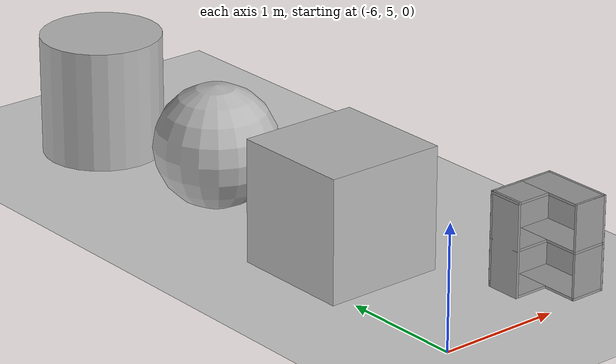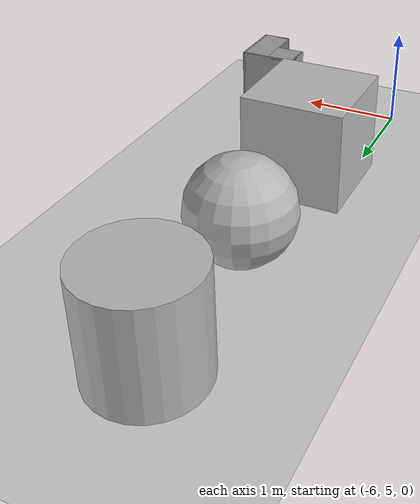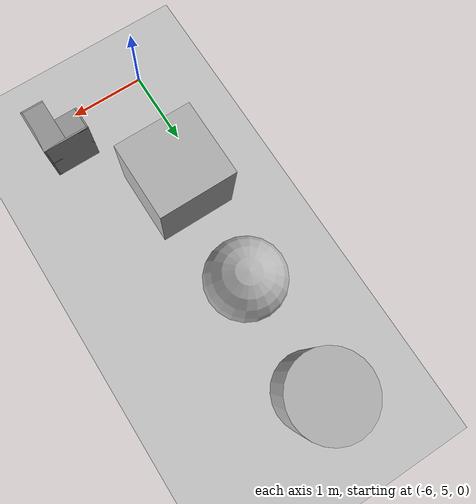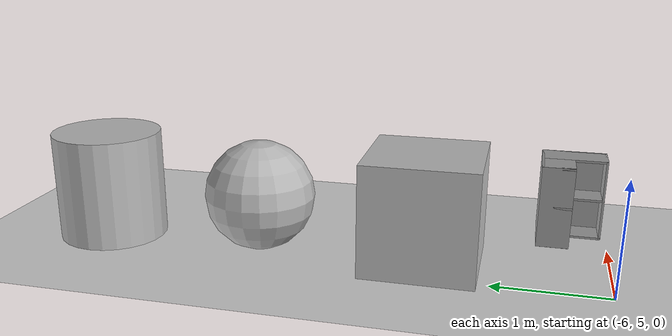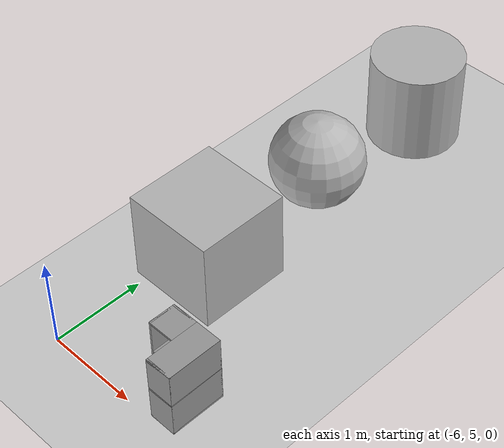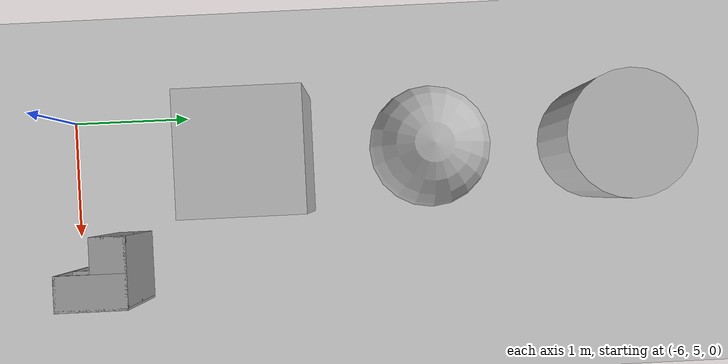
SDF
<sdf version="1.7">
 <world name="default">
  <model name="ground_plane">
   <static>1</static>
   <link name="link">
    <collision name="collision">
     <geometry><plane><normal>0 0 1</normal><size>100 100</size></plane></geometry>
     <surface><friction><ode><mu>100</mu><mu2>50</mu2></ode></friction></surface>
    </collision>
    <visual name="visual">
     <cast_shadows>0</cast_shadows>
     <geometry><plane><normal>0 0 1</normal><size>100 100</size></plane></geometry>
     <material>
      <script><uri>file://media/materials/scripts/gazebo.material</uri><name>Gazebo/Grey</name></script>
     </material>
    </visual>
   </link>
  </model>
  <model name="Wall_Cabinet_Coin_24x30W_clone">
   <link name="Wall_10">
    <pose>0.286 -0.148 0.384 0 -0 0</pose>
    <inertial>
     <mass>2.1259</mass>
     <inertia><ixx>0.0158</ixx><iyy>0.1202</iyy><izz>0.1046</izz><ixy>0</ixy><ixz>0</ixz><iyz>0</iyz></inertia>
    </inertial>
    <collision name="Wall_10_Collision"><geometry><box><size>0.02 0.296 0.768</size></box></geometry></collision>
    <visual name="Wall_10_Visual">
     <geometry><box><size>0.02 0.296 0.768</size></box></geometry>
     <material>
      <script><uri>file://media/materials/scripts/gazebo.material</uri><name>Gazebo/Grey</name></script>
      <ambient>1 1 1 1</ambient>
     </material>
    </visual>
   </link>
   <joint name="10_16" type="fixed">
    <pose>0 0 -0.374 0 -0 0</pose>
    <parent>Wall_16</parent>
    <child>Wall_10</child>
    <axis><xyz>1 0 0</xyz><limit><lower>-1e+16</lower><upper>1e+16</upper></limit></axis>
   </joint>
   <joint name="10_14" type="fixed">
    <parent>Wall_14</parent>
    <child>Wall_10</child>
    <axis><xyz>1 0 0</xyz><limit><lower>-1e+16</lower><upper>1e+16</upper></limit></axis>
   </joint>
   <joint name="10_12" type="fixed">
    <pose>0 0 0.374 0 -0 0</pose>
    <parent>Wall_12</parent>
    <child>Wall_10</child>
    <axis><xyz>1 0 0</xyz><limit><lower>-1e+16</lower><upper>1e+16</upper></limit></axis>
   </joint>
   <joint name="10_29" type="fixed">
    <pose>0 -0.148 0 0 -0 0</pose>
    <parent>Wall_29</parent>
    <child>Wall_10</child>
    <axis><xyz>1 0 0</xyz><limit><lower>-1e+16</lower><upper>1e+16</upper></limit></axis>
   </joint>
   <link name="Wall_12">
    <pose>0.148 -0.148 0.758 0 -0 0</pose>
    <inertial>
     <mass>0.8802</mass>
     <inertia><ixx>0.0065</ixx><iyy>0.0139</iyy><izz>0.0074</izz><ixy>0</ixy><ixz>0</ixz><iyz>0</iyz></inertia>
    </inertial>
    <collision name="Wall_12_Collision"><geometry><box><size>0.296 0.296 0.02</size></box></geometry></collision>
    <visual name="Wall_12_Visual">
     <geometry><box><size>0.296 0.296 0.02</size></box></geometry>
     <material>
      <script><uri>file://media/materials/scripts/gazebo.material</uri><name>Gazebo/Grey</name></script>
      <ambient>1 1 1 1</ambient>
     </material>
    </visual>
   </link>
   <joint name="12_29" type="fixed">
    <pose>0 -0.148 0 0 -0 0</pose>
    <parent>Wall_29</parent>
    <child>Wall_12</child>
    <axis><xyz>0 0 1</xyz><limit><lower>-1e+16</lower><upper>1e+16</upper></limit></axis>
   </joint>
   <link name="Wall_14">
    <pose>0.148 -0.148 0.384 0 -0 0</pose>
    <inertial>
     <mass>0.8802</mass>
     <inertia><ixx>0.0065</ixx><iyy>0.0139</iyy><izz>0.0074</izz><ixy>0</ixy><ixz>0</ixz><iyz>0</iyz></inertia>
    </inertial>
    <collision name="Wall_14_Collision"><geometry><box><size>0.296 0.296 0.02</size></box></geometry></collision>
    <visual name="Wall_14_Visual">
     <geometry><box><size>0.296 0.296 0.02</size></box></geometry>
     <material>
      <script><uri>file://media/materials/scripts/gazebo.material</uri><name>Gazebo/Grey</name></script>
      <ambient>1 1 1 1</ambient>
     </material>
    </visual>
   </link>
   <joint name="14_29" type="fixed">
    <pose>0 -0.148 0 0 -0 0</pose>
    <parent>Wall_29</parent>
    <child>Wall_14</child>
    <axis><xyz>0 1 0</xyz><limit><lower>-1e+16</lower><upper>1e+16</upper></limit></axis>
   </joint>
   <link name="Wall_16">
    <pose>0.148 -0.148 0.01 0 -0 0</pose>
    <inertial>
     <mass>0.8802</mass>
     <inertia><ixx>0.0065</ixx><iyy>0.0139</iyy><izz>0.0074</izz><ixy>0</ixy><ixz>0</ixz><iyz>0</iyz></inertia>
    </inertial>
    <collision name="Wall_16_Collision"><geometry><box><size>0.296 0.296 0.02</size></box></geometry></collision>
    <visual name="Wall_16_Visual">
     <geometry><box><size>0.296 0.296 0.02</size></box></geometry>
     <material>
      <script><uri>file://media/materials/scripts/gazebo.material</uri><name>Gazebo/Grey</name></script>
      <ambient>1 1 1 1</ambient>
     </material>
    </visual>
   </link>
   <joint name="16_29" type="fixed">
    <pose>0 -0.148 0 0 -0 0</pose>
    <parent>Wall_29</parent>
    <child>Wall_16</child>
    <axis><xyz>0 1 0</xyz><limit><lower>-1e+16</lower><upper>1e+16</upper></limit></axis>
   </joint>
   <link name="Wall_18">
    <pose>-0.148 0 0.01 0 -0 0</pose>
    <inertial>
     <mass>1.6525</mass>
     <inertia><ixx>0.0491</ixx><iyy>0.0613</iyy><izz>0.0123</izz><ixy>0</ixy><ixz>0</ixz><iyz>0</iyz></inertia>
    </inertial>
    <collision name="Wall_18_Collision"><geometry><box><size>0.296 0.592 0.02</size></box></geometry></collision>
    <visual name="Wall_18_Visual">
     <geometry><box><size>0.296 0.592 0.02</size></box></geometry>
     <material>
      <script><uri>file://media/materials/scripts/gazebo.material</uri><name>Gazebo/Grey</name></script>
      <ambient>1 1 1 1</ambient>
     </material>
    </visual>
   </link>
   <joint name="18_16" type="fixed">
    <pose>0.148 -0.148 0 0 -0 0</pose>
    <parent>Wall_16</parent>
    <child>Wall_18</child>
    <axis><xyz>1 0 0</xyz><limit><lower>-1e+16</lower><upper>1e+16</upper></limit></axis>
   </joint>
   <joint name="18_29" type="fixed">
    <pose>0 -0.296 0 0 -0 0</pose>
    <parent>Wall_29</parent>
    <child>Wall_18</child>
    <axis><xyz>0 1 0</xyz><limit><lower>-1e+16</lower><upper>1e+16</upper></limit></axis>
   </joint>
   <joint name="18_27" type="fixed">
    <pose>-0.148 0 0 0 -0 0</pose>
    <parent>Wall_27</parent>
    <child>Wall_18</child>
    <axis><xyz>1 0 0</xyz><limit><lower>-1e+16</lower><upper>1e+16</upper></limit></axis>
   </joint>
   <joint name="18_30" type="fixed">
    <pose>0 0.296 0 0 -0 0</pose>
    <parent>Wall_30</parent>
    <child>Wall_18</child>
    <axis><xyz>0 1 0</xyz><limit><lower>-1e+16</lower><upper>1e+16</upper></limit></axis>
   </joint>
   <link name="Wall_20">
    <pose>-0.148 0 0.384 0 -0 0</pose>
    <inertial>
     <mass>1.6525</mass>
     <inertia><ixx>0.0491</ixx><iyy>0.0613</iyy><izz>0.0123</izz><ixy>0</ixy><ixz>0</ixz><iyz>0</iyz></inertia>
    </inertial>
    <collision name="Wall_20_Collision"><geometry><box><size>0.296 0.592 0.02</size></box></geometry></collision>
    <visual name="Wall_20_Visual">
     <geometry><box><size>0.296 0.592 0.02</size></box></geometry>
     <material>
      <script><uri>file://media/materials/scripts/gazebo.material</uri><name>Gazebo/Grey</name></script>
      <ambient>1 1 1 1</ambient>
     </material>
    </visual>
   </link>
   <joint name="20_14" type="fixed">
    <pose>0.148 -0.148 0 0 -0 0</pose>
    <parent>Wall_14</parent>
    <child>Wall_20</child>
    <axis><xyz>1 0 0</xyz><limit><lower>-1e+16</lower><upper>1e+16</upper></limit></axis>
   </joint>
   <joint name="20_29" type="fixed">
    <pose>0 -0.296 0 0 -0 0</pose>
    <parent>Wall_29</parent>
    <child>Wall_20</child>
    <axis><xyz>0 1 0</xyz><limit><lower>-1e+16</lower><upper>1e+16</upper></limit></axis>
   </joint>
   <joint name="20_27" type="fixed">
    <pose>-0.148 0 0 0 -0 0</pose>
    <parent>Wall_27</parent>
    <child>Wall_20</child>
    <axis><xyz>1 0 0</xyz><limit><lower>-1e+16</lower><upper>1e+16</upper></limit></axis>
   </joint>
   <joint name="20_30" type="fixed">
    <pose>0 0.296 0 0 -0 0</pose>
    <parent>Wall_30</parent>
    <child>Wall_20</child>
    <axis><xyz>0 1 0</xyz><limit><lower>-1e+16</lower><upper>1e+16</upper></limit></axis>
   </joint>
   <link name="Wall_22">
    <pose>-0.148 0 0.758 0 -0 0</pose>
    <inertial>
     <mass>1.6525</mass>
     <inertia><ixx>0.0491</ixx><iyy>0.0613</iyy><izz>0.0123</izz><ixy>0</ixy><ixz>0</ixz><iyz>0</iyz></inertia>
    </inertial>
    <collision name="Wall_22_Collision"><geometry><box><size>0.296 0.592 0.02</size></box></geometry></collision>
    <visual name="Wall_22_Visual">
     <geometry><box><size>0.296 0.592 0.02</size></box></geometry>
     <material>
      <script><uri>file://media/materials/scripts/gazebo.material</uri><name>Gazebo/Grey</name></script>
      <ambient>1 1 1 1</ambient>
     </material>
    </visual>
   </link>
   <joint name="22_12" type="fixed">
    <pose>0.148 -0.148 0 0 -0 0</pose>
    <parent>Wall_12</parent>
    <child>Wall_22</child>
    <axis><xyz>1 0 0</xyz><limit><lower>-1e+16</lower><upper>1e+16</upper></limit></axis>
   </joint>
   <joint name="22_29" type="fixed">
    <pose>0 -0.296 0 0 -0 0</pose>
    <parent>Wall_29</parent>
    <child>Wall_22</child>
    <axis><xyz>0 1 0</xyz><limit><lower>-1e+16</lower><upper>1e+16</upper></limit></axis>
   </joint>
   <joint name="22_27" type="fixed">
    <pose>-0.148 0 0 0 -0 0</pose>
    <parent>Wall_27</parent>
    <child>Wall_22</child>
    <axis><xyz>1 0 0</xyz><limit><lower>-1e+16</lower><upper>1e+16</upper></limit></axis>
   </joint>
   <joint name="22_30" type="fixed">
    <pose>0 0.296 0 0 -0 0</pose>
    <parent>Wall_30</parent>
    <child>Wall_22</child>
    <axis><xyz>0 1 0</xyz><limit><lower>-1e+16</lower><upper>1e+16</upper></limit></axis>
   </joint>
   <link name="Wall_27">
    <pose>-0.286 0 0.384 0 -0 0</pose>
    <inertial>
     <mass>4.2589</mass>
     <inertia><ixx>0.1266</ixx><iyy>0.3358</iyy><izz>0.2095</izz><ixy>0</ixy><ixz>0</ixz><iyz>0</iyz></inertia>
    </inertial>
    <collision name="Wall_27_Collision"><geometry><box><size>0.02 0.592 0.768</size></box></geometry></collision>
    <visual name="Wall_27_Visual">
     <geometry><box><size>0.02 0.592 0.768</size></box></geometry>
     <material>
      <script><uri>file://media/materials/scripts/gazebo.material</uri><name>Gazebo/Grey</name></script>
      <ambient>1 1 1 1</ambient>
     </material>
    </visual>
   </link>
   <joint name="27_30" type="fixed">
    <pose>0 0.296 0 0 -0 0</pose>
    <parent>Wall_30</parent>
    <child>Wall_27</child>
    <axis><xyz>0 1 0</xyz><limit><lower>-1e+16</lower><upper>1e+16</upper></limit></axis>
   </joint>
   <link name="Wall_29">
    <pose>0 -0.286 0.384 0 -0 0</pose>
    <inertial>
     <mass>4.3176</mass>
     <inertia><ixx>0.134</ixx><iyy>0.2091</iyy><izz>0.3428</izz><ixy>0</ixy><ixz>0</ixz><iyz>0</iyz></inertia>
    </inertial>
    <collision name="Wall_29_Collision"><geometry><box><size>0.592 0.02 0.768</size></box></geometry></collision>
    <visual name="Wall_29_Visual">
     <geometry><box><size>0.592 0.02 0.768</size></box></geometry>
     <material>
      <script><uri>file://media/materials/scripts/gazebo.material</uri><name>Gazebo/Grey</name></script>
      <ambient>1 1 1 1</ambient>
     </material>
    </visual>
   </link>
   <link name="Wall_30">
    <pose>-0.148 0.286 0.384 0 -0 0</pose>
    <inertial>
     <mass>2.1093</mass>
     <inertia><ixx>0.1021</ixx><iyy>0.0157</iyy><izz>0.1177</izz><ixy>0</ixy><ixz>0</ixz><iyz>0</iyz></inertia>
    </inertial>
    <collision name="Wall_30_Collision"><geometry><box><size>0.296 0.02 0.768</size></box></geometry></collision>
    <visual name="Wall_30_Visual">
     <geometry><box><size>0.296 0.02 0.768</size></box></geometry>
     <material>
      <script><uri>file://media/materials/scripts/gazebo.material</uri><name>Gazebo/Grey</name></script>
      <ambient>1 1 1 1</ambient>
     </material>
    </visual>
   </link>
   <static>1</static>
   <pose>-4.72511 5.33377 0 0 -0 3.14156</pose>
  </model>
  <model name="textured_shapes">
   <pose>-5.63002 8.09641 0.5 0 -0 0</pose>
   <link name="box">
    <pose>0 -1.5 0 0 -0 0</pose>
    <collision name="collision"><geometry><box><size>1 1 1</size></box></geometry></collision>
    <visual name="visual">
     <geometry><box><size>1 1 1</size></box></geometry>
     <material>
      <script>
       <uri>model://textured_shapes/materials/scripts</uri>
       <uri>model://textured_shapes/materials/textures</uri>
       <name>TexturedShape/Squares</name>
      </script>
     </material>
    </visual>
    <inertial>
     <inertia><ixx>1</ixx><ixy>0</ixy><ixz>0</ixz><iyy>1</iyy><iyz>0</iyz><izz>1</izz></inertia>
     <mass>1</mass>
    </inertial>
   </link>
   <link name="sphere">
    <collision name="collision"><geometry><sphere><radius>0.5</radius></sphere></geometry></collision>
    <visual name="visual">
     <geometry><sphere><radius>0.5</radius></sphere></geometry>
     <material>
      <script>
       <uri>model://textured_shapes/materials/scripts</uri>
       <uri>model://textured_shapes/materials/textures</uri>
       <name>TexturedShape/Squares</name>
      </script>
     </material>
    </visual>
    <inertial>
     <inertia><ixx>1</ixx><ixy>0</ixy><ixz>0</ixz><iyy>1</iyy><iyz>0</iyz><izz>1</izz></inertia>
     <mass>1</mass>
    </inertial>
   </link>
   <link name="cylinder">
    <pose>0 1.5 0 0 -0 0</pose>
    <collision name="collision">
     <geometry><cylinder><radius>0.5</radius><length>1</length></cylinder></geometry>
    </collision>
    <visual name="visual">
     <geometry><cylinder><radius>0.5</radius><length>1</length></cylinder></geometry>
     <material>
      <script>
       <uri>model://textured_shapes/materials/scripts</uri>
       <uri>model://textured_shapes/materials/textures</uri>
       <name>TexturedShape/Squares</name>
      </script>
     </material>
    </visual>
    <inertial>
     <inertia><ixx>1</ixx><ixy>0</ixy><ixz>0</ixz><iyy>1</iyy><iyz>0</iyz><izz>1</izz></inertia>
     <mass>1</mass>
    </inertial>
   </link>
  </model>
 </world>
</sdf>
